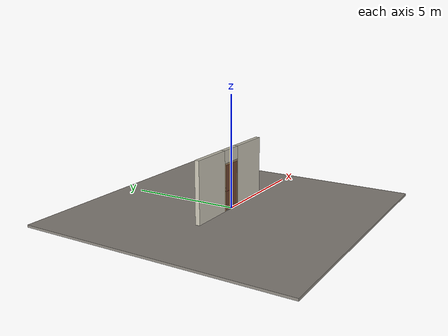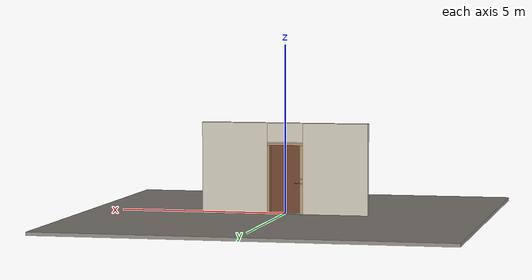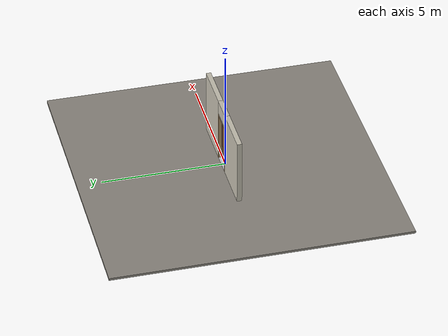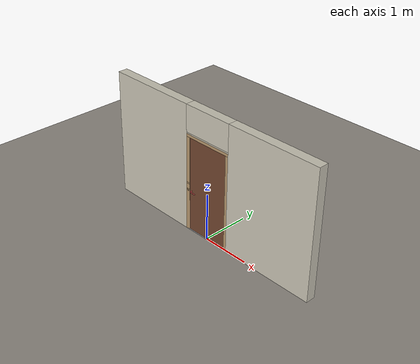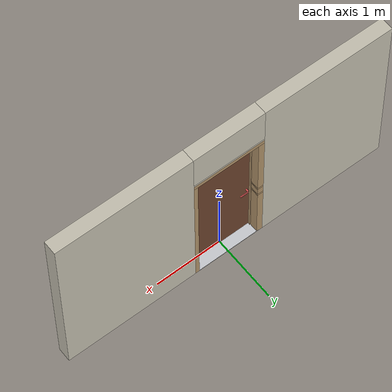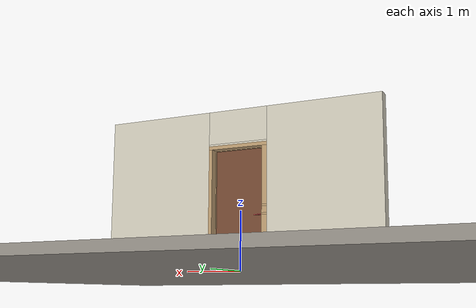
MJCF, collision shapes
<?xml version="1.0" ?>
<mujoco model="db0889_swing_single_minimal">
  <compiler angle="radian" meshdir="../../hardware" texturedir="../../textures" autolimits="true" inertiafromgeom="false"/>
  <option timestep="0.002" integrator="implicitfast" cone="elliptic" impratio="10" noslip_iterations="3">
    <flag multiccd="enable"/>
  </option>
  <size memory="16M"/>
  <default>
    <geom condim="4" solref="0.005 1" solimp="0.95 0.99 0.001"/>
    <joint solreflimit="0.005 1" solimplimit="0.95 0.99 0.001"/>
    <tendon solreflimit="0.005 1"/>
    <equality solref="0.002 1"/>
  </default>
  <visual>
    <headlight ambient="0.4 0.4 0.4" diffuse="0.7 0.7 0.7" specular="0.2 0.2 0.2"/>
    <quality shadowsize="4096"/>
    <map znear="0.01" zfar="60"/>
  </visual>
  <asset>
    <mesh name="lever_6fbb1e9593" file="lever_6fbb1e9593.obj"/>
    <material name="mat_floor" rgba="0.55 0.53 0.5 1" specular="0.2" shininess="0.15" reflectance="0"/>
    <material name="mat_wall" rgba="0.78 0.76 0.7 1" specular="0.2" shininess="0.1" reflectance="0"/>
    <material name="mat_leaf" rgba="0.43 0.263 0.177 1" specular="0.2" shininess="0.4" reflectance="0"/>
    <material name="mat_leaf_panel" rgba="0.396 0.242 0.163 1" specular="0.2" shininess="0.4" reflectance="0"/>
    <material name="mat_hinge" rgba="0.65 0.66 0.68 1" specular="0.74" shininess="0.5" reflectance="0.36"/>
    <material name="mat_op_brass" rgba="0.85 0.66 0.3 1" specular="0.8" shininess="0.75" reflectance="0.4"/>
    <material name="mat_trim" rgba="0.85 0.66 0.3 1" specular="0.8" shininess="0.75" reflectance="0.4"/>
    <material name="mat_bolt" rgba="0.75 0.76 0.77 1" specular="0.8" shininess="0.65" reflectance="0.4"/>
    <material name="mat_night_latch" rgba="0.55 0.42 0.22 1" specular="0.74" shininess="0.45" reflectance="0.36"/>
    <material name="mat_deadbolt" rgba="0.85 0.66 0.3 1" specular="0.8" shininess="0.75" reflectance="0.4"/>
    <material name="mat_frame" rgba="0.7 0.58 0.42 1" specular="0.2" shininess="0.5" reflectance="0"/>
    <material name="mat_threshold" rgba="0.8 0.81 0.83 1" specular="0.8" shininess="0.6" reflectance="0.4"/>
    <texture name="skybox" type="skybox" builtin="gradient" rgb1="0.6 0.7 0.85" rgb2="0.9 0.92 0.95" width="256" height="256"/>
  </asset>
  <worldbody>
    <light name="sun" pos="1.5 -2.5 4" dir="-0.3 0.5 -0.8" directional="true" diffuse="0.8 0.8 0.8" specular="0.3 0.3 0.3" castshadow="true"/>
    <light name="fill" pos="-1.5 2.5 3" dir="0.3 -0.5 -0.7" directional="true" diffuse="0.35 0.35 0.4" castshadow="false"/>
    <camera name="robot_view" pos="0 -2.466687 1.734312" xyaxes="1 0 0 0 0.26963 0.962964" fovy="52"/>
    <camera name="far_view" pos="0 2.617687 1.734312" xyaxes="-1 0 0 0 -0.26963 0.962964" fovy="52"/>
    <camera name="iso" pos="-1.932062 -2.059938 2.141063" xyaxes="0.741536 -0.670913 0 0.242917 0.268487 0.932151" fovy="46"/>
    <camera name="detail_handle" pos="-0.1175 -0.8725 1.194" xyaxes="0.97561 0.219512 0 -0.070934 0.315262 0.94635" fovy="38"/>
    <geom name="floor" type="box" size="6 6 0.05" pos="0 0 -0.05" material="mat_floor" group="0" contype="1" conaffinity="1" friction="0.8 0.005 0.0001" density="2400"/>
    <geom name="wall_left" type="box" size="0.97475 0.1 1.35" pos="-1.52525 0.0755 1.35" material="mat_wall" group="0" contype="1" conaffinity="1" friction="0.6 0.005 0.0001" density="800"/>
    <geom name="wall_right" type="box" size="0.98975 0.1 1.35" pos="1.51025 0.0755 1.35" material="mat_wall" group="0" contype="1" conaffinity="1" friction="0.6 0.005 0.0001" density="800"/>
    <geom name="wall_header" type="box" size="0.5355 0.1 0.2825" pos="-0.015 0.0755 2.4175" material="mat_wall" group="0" contype="1" conaffinity="1" friction="0.6 0.005 0.0001" density="800"/>
    <geom name="jamb_hinge" type="box" size="0.03 0.1 1.0225" pos="0.4905 0.0755 1.0225" material="mat_frame" group="0" contype="1" conaffinity="1" friction="0.6 0.005 0.0001" density="750"/>
    <geom name="strike_914_wall_n" type="box" size="0.045 0.0845 0.015" pos="-0.5055 0.091 0.914" material="mat_frame" group="0" contype="1" conaffinity="1" friction="0.6 0.005 0.0001" density="750"/>
    <geom name="strike_914_wall_p" type="box" size="0.045 0.008 0.015" pos="-0.5055 -0.0145 0.914" material="mat_frame" group="0" contype="1" conaffinity="1" friction="0.6 0.005 0.0001" density="750"/>
    <geom name="strike_914_ramp" type="box" size="0.045 0.016771 0.015" pos="-0.508249 -0.017375 0.914" quat="0.973249 0 0 -0.229753" material="mat_frame" group="0" contype="1" conaffinity="1" friction="0.12 0.005 0.0001" density="750"/>
    <geom name="strike_914_back" type="box" size="0.036 0.0065 0.015" pos="-0.5145 0 0.914" material="mat_frame" group="0" contype="1" conaffinity="1" friction="0.6 0.005 0.0001" density="750"/>
    <geom name="strike_1054_wall_n" type="box" size="0.045 0.083 0.0155" pos="-0.5055 0.0925 1.054" material="mat_frame" group="0" contype="1" conaffinity="1" friction="0.6 0.005 0.0001" density="750"/>
    <geom name="strike_1054_wall_p" type="box" size="0.045 0.0075 0.0155" pos="-0.5055 -0.017 1.054" material="mat_frame" group="0" contype="1" conaffinity="1" friction="0.6 0.005 0.0001" density="750"/>
    <geom name="strike_1054_back" type="box" size="0.035 0.0095 0.0155" pos="-0.5155 0 1.054" material="mat_frame" group="0" contype="1" conaffinity="1" friction="0.6 0.005 0.0001" density="750"/>
    <geom name="jamb_strike_0" type="box" size="0.045 0.1 0.4495" pos="-0.5055 0.0755 0.4495" material="mat_frame" group="0" contype="1" conaffinity="1" friction="0.6 0.005 0.0001" density="750"/>
    <geom name="jamb_strike_1" type="box" size="0.045 0.1 0.05475" pos="-0.5055 0.0755 0.98375" material="mat_frame" group="0" contype="1" conaffinity="1" friction="0.6 0.005 0.0001" density="750"/>
    <geom name="jamb_strike_2" type="box" size="0.045 0.1 0.48775" pos="-0.5055 0.0755 1.55725" material="mat_frame" group="0" contype="1" conaffinity="1" friction="0.6 0.005 0.0001" density="750"/>
    <geom name="jamb_head" type="box" size="0.5355 0.1 0.03" pos="-0.015 0.0755 2.075" material="mat_frame" group="0" contype="1" conaffinity="1" friction="0.6 0.005 0.0001" density="750"/>
    <geom name="head_stud" type="box" size="0.5355 0.1 0.015" pos="-0.015 0.0755 2.12" material="mat_wall" group="0" contype="1" conaffinity="1" friction="0.6 0.005 0.0001" density="500"/>
    <geom name="stop_hinge" type="box" size="0.0055 0.016 1.0225" pos="0.455 0.034 1.0225" material="mat_frame" group="0" contype="1" conaffinity="1" friction="0.6 0.005 0.0001" density="750"/>
    <geom name="stop_strike" type="box" size="0.0055 0.016 1.0225" pos="-0.455 0.034 1.0225" material="mat_frame" group="0" contype="1" conaffinity="1" friction="0.6 0.005 0.0001" density="750"/>
    <geom name="stop_head" type="box" size="0.4605 0.016 0.0055" pos="0 0.034 2.0395" material="mat_frame" group="0" contype="1" conaffinity="1" friction="0.6 0.005 0.0001" density="750"/>
    <geom name="threshold" type="box" size="0.5205 0.1 0.0065" pos="0 0.0755 0.0065" material="mat_threshold" group="0" contype="1" conaffinity="1" friction="0.5 0.005 0.0001" density="2700"/>
    <site name="approach_point" pos="0 -1.5 0" quat="1 0 0 0" size="0.05" rgba="0.2 0.9 0.2 0.5" group="4"/>
    <site name="goal_point" pos="0 1.5 0" quat="1 0 0 0" size="0.05" rgba="0.2 0.9 0.2 0.5" group="4"/>
    <site name="door_plane_center" pos="0 0 1.0225" quat="1 0 0 0" size="0.02" rgba="0.2 0.9 0.2 0.5" group="4"/>
    <body name="leaf" pos="0.4605 0 0">
      <inertial pos="-0.46 0 1.029" mass="26.160085" quat="-0.5 0.5 0.5 0.5" diaginertia="1.823839733 8.933235338 10.751734054"/>
      <joint name="leaf_hinge" type="hinge" axis="0 0 1" pos="-0.003 -0.0245 0" limited="true" range="0 1.745329" damping="0.30611" frictionloss="7.882549" armature="0.02"/>
      <geom name="leaf_slab" type="box" size="0.457 0.0175 1.012" pos="-0.46 0 1.029" material="mat_leaf" group="0" contype="1" conaffinity="1" friction="0.35 0.005 0.0001" density="1"/>
      <site name="leaf_edge_mid" pos="-0.917 0 1.012" quat="1 0 0 0" size="0.02" rgba="0.2 0.9 0.2 0.5" group="4"/>
      <body name="leaf_handle" pos="-0.862 0 0.914">
        <inertial pos="0.043135 0 0" mass="0.776327" quat="0.707107 0 0 -0.707107" diaginertia="0.001583515 0.00332975 0.004868211"/>
        <joint name="leaf_handle_hinge" type="hinge" axis="0 1 0" limited="true" range="0 0.7" damping="0.270114" frictionloss="0.064" stiffness="1.4" springref="-0.428571" armature="0.01"/>
        <geom name="leaf_handle_lever_n" type="mesh" mesh="lever_6fbb1e9593" pos="0 -0.0175 0" quat="0 0 -0.707107 0.707107" material="mat_op_brass" group="1" contype="0" conaffinity="0" density="3000"/>
        <geom name="leaf_handle_lever_col_n" type="capsule" size="0.01 0.055" pos="0.065 -0.0725 0" quat="0.707107 0 0.707107 0" material="mat_op_brass" group="3" contype="1" conaffinity="1" rgba="0.8 0.3 0.3 0.25" friction="0.7 0.01 0.0001" density="3000"/>
        <geom name="leaf_handle_hub_col_n" type="cylinder" size="0.012 0.022" pos="0 -0.0475 0" quat="0.707107 -0.707107 0 0" material="mat_op_brass" group="3" contype="1" conaffinity="1" rgba="0.8 0.3 0.3 0.25" friction="0.6 0.005 0.0001" density="3000"/>
        <geom name="leaf_handle_lever_p" type="mesh" mesh="lever_6fbb1e9593" pos="0 0.0175 0" quat="0 0 0.707107 0.707107" material="mat_op_brass" group="1" contype="0" conaffinity="0" density="3000"/>
        <geom name="leaf_handle_lever_col_p" type="capsule" size="0.01 0.055" pos="0.065 0.0725 0" quat="0.707107 0 0.707107 0" material="mat_op_brass" group="3" contype="1" conaffinity="1" rgba="0.8 0.3 0.3 0.25" friction="0.7 0.01 0.0001" density="3000"/>
        <geom name="leaf_handle_hub_col_p" type="cylinder" size="0.012 0.022" pos="0 0.0475 0" quat="0.707107 -0.707107 0 0" material="mat_op_brass" group="3" contype="1" conaffinity="1" rgba="0.8 0.3 0.3 0.25" friction="0.6 0.005 0.0001" density="3000"/>
        <site name="leaf_handle_grip_n" pos="0.104 -0.0725 0" quat="1 0 0 0" size="0.012" rgba="0.2 0.9 0.2 0.5" group="4"/>
        <site name="leaf_handle_grip_p" pos="0.104 0.0725 0" quat="1 0 0 0" size="0.012" rgba="0.2 0.9 0.2 0.5" group="4"/>
      </body>
      <body name="leaf_latch_bolt" pos="-0.917 0 0.914">
        <inertial pos="0.008 0 0" mass="0.027149" quat="0 0 -0.707107 0.707107" diaginertia="0.000000328 0.000003943 0.000003943"/>
        <joint name="leaf_latch_bolt_slide" type="slide" axis="1 0 0" limited="true" range="0 0.014" damping="2" frictionloss="0.3" stiffness="400" springref="-0.01" armature="0.1"/>
        <geom name="leaf_latch_bolt_capsule" type="capsule" size="0.005 0.017" pos="0.008 0 0" quat="0.707107 0 -0.707107 0" material="mat_bolt" group="0" contype="1" conaffinity="1" friction="0.2 0.005 0.0001" density="8500"/>
      </body>
    </body>
  </worldbody>
  <tendon>
    <fixed name="leaf_latch_bolt_coupling" limited="true" range="0 10">
      <joint joint="leaf_latch_bolt_slide" coef="1"/>
      <joint joint="leaf_handle_hinge" coef="-0.021212"/>
    </fixed>
  </tendon>
  <sensor>
    <jointpos name="leaf_hinge_pos" joint="leaf_hinge"/>
    <jointvel name="leaf_hinge_vel" joint="leaf_hinge"/>
    <jointpos name="leaf_handle_hinge_pos" joint="leaf_handle_hinge"/>
    <jointvel name="leaf_handle_hinge_vel" joint="leaf_handle_hinge"/>
    <jointpos name="leaf_latch_bolt_slide_pos" joint="leaf_latch_bolt_slide"/>
    <jointvel name="leaf_latch_bolt_slide_vel" joint="leaf_latch_bolt_slide"/>
  </sensor>
</mujoco>
